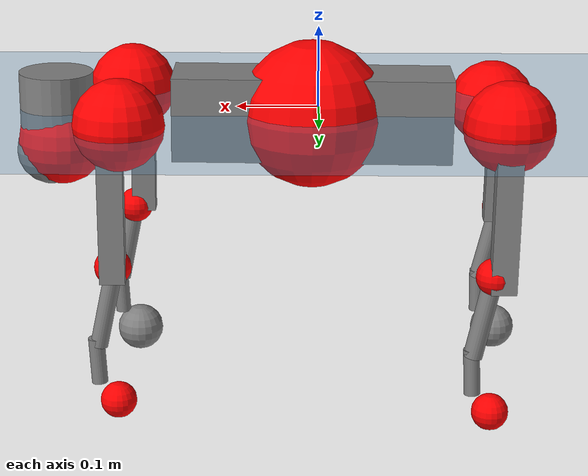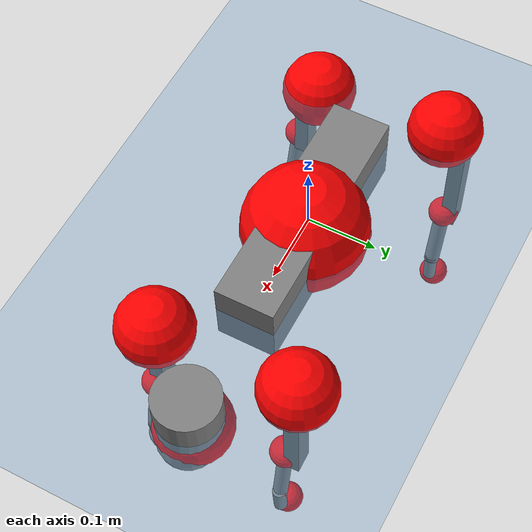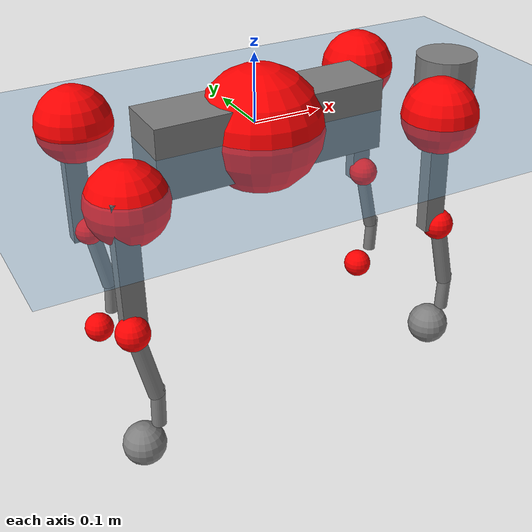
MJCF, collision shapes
<mujoco model="go2">
  <compiler angle="radian" assetdir="assets" balanceinertia="true" inertiafromgeom="false"/>

  <option timestep="0.005" density="1.2" viscosity="2e-05"/>

  <size nkey="1"/>

  <visual>
    <quality shadowsize="8192"/>
    <map shadowclip="0.5"/>
  </visual>

  <default>
    <default class="/">
      <geom contype="0" conaffinity="0" group="1" solref="-1000 -80"/>
      <site size="0.01 0.005 0.005" group="5"/>
      <general forcelimited="true" biastype="affine" gainprm="20" biasprm="0 -20 -0.5"/>
      <default class="go2">
        <joint armature="0.01" damping="0.01" frictionloss="0.2"/>
        <geom condim="1" margin="0.001"/>
        <default class="visual">
          <geom type="mesh" group="2"/>
        </default>
        <default class="collision">
          <geom group="3"/>
          <default class="foot">
            <geom size="0.022 0 0" condim="6" priority="1" friction="0.8 0.02 0.01" solimp="0.015 1 0.022"/>
          </default>
        </default>
        <default class="reward_collision_sphere">
          <geom group="5" rgba="1 0 0 1"/>
        </default>
      </default>
    </default>
  </default>

  <asset>
    <texture type="skybox" colorspace="auto" name="//unnamed_texture_0" builtin="gradient" rgb1="0.95 0.95 0.95" rgb2="0.95 0.95 0.95" width="100" height="600"/>
    <texture type="2d" colorspace="auto" name="texplane" builtin="checker" rgb1="0.345 0.575 0.748" rgb2="0.345 0.575 0.748" markrgb="1 1 1" width="512" height="512"/>
    <material name="MatPlane" class="/" texture="texplane" texuniform="true" texrepeat="2 2" specular="0.9"/>
    <material name="metal" class="/" rgba="0.9 0.95 0.95 1"/>
    <material name="black" class="/" rgba="0 0 0 1"/>
    <material name="white" class="/"/>
    <material name="gray" class="/" rgba="0.671705 0.692426 0.77427 1"/>
    <mesh name="base_0" class="/" file="base_0.obj"/>
    <mesh name="base_1" class="/" file="base_1.obj"/>
    <mesh name="base_2" class="/" file="base_2.obj"/>
    <mesh name="base_3" class="/" file="base_3.obj"/>
    <mesh name="base_4" class="/" file="base_4.obj"/>
    <mesh name="hip_0" class="/" file="hip_0.obj"/>
    <mesh name="hip_1" class="/" file="hip_1.obj"/>
    <mesh name="thigh_0" class="/" file="thigh_0.obj"/>
    <mesh name="thigh_1" class="/" file="thigh_1.obj"/>
    <mesh name="thigh_mirror_0" class="/" file="thigh_mirror_0.obj"/>
    <mesh name="thigh_mirror_1" class="/" file="thigh_mirror_1.obj"/>
    <mesh name="calf_0" class="/" file="calf_0.obj"/>
    <mesh name="calf_1" class="/" file="calf_1.obj"/>
    <mesh name="calf_mirror_0" class="/" file="calf_mirror_0.obj"/>
    <mesh name="calf_mirror_1" class="/" file="calf_mirror_1.obj"/>
    <mesh name="foot" class="/" file="foot.obj"/>
  </asset>

  <worldbody>
    <geom name="floor" class="/" size="100 100 0.125" type="plane" group="0" material="MatPlane"/>
    <light name="toplight_shadow" class="/" pos="0 0 5" dir="0.0990148 0.0990148 -0.990148" type="directional" ambient="0.04 0.04 0.04" diffuse="0.55 0.55 0.55" specular="0.12 0.12 0.12"/>
    <light name="toplight_fill" class="/" pos="0 0 5" dir="0.0990148 0.0990148 -0.990148" type="directional" castshadow="false" ambient="0.04 0.04 0.04" diffuse="0.3 0.3 0.3" specular="0.08 0.08 0.08"/>
    <body name="trunk" childclass="go2" pos="0.00730015 -0.00105752 -0.00861551" quat="0.999988 0.00053629 -0.00477954 0.00115161">
      <inertial pos="0.0417472 0.0153692 0.00524128" quat="0.0288816 0.723381 0.00529033 0.689825" mass="3.8568" diaginertia="0.161592 0.0294056 0.00846108"/>
      <joint name="//unnamed_joint_0" type="free" armature="0" damping="0" frictionloss="0"/>
      <geom name="//unnamed_geom_1" class="visual" material="black" mesh="base_0"/>
      <geom name="//unnamed_geom_2" class="visual" material="black" mesh="base_1"/>
      <geom name="//unnamed_geom_3" class="visual" material="black" mesh="base_2"/>
      <geom name="//unnamed_geom_4" class="visual" material="white" mesh="base_3"/>
      <geom name="//unnamed_geom_5" class="visual" material="gray" mesh="base_4"/>
      <geom name="trunk_1" class="collision" size="0.170594 0.0423992 0.0516953" type="box"/>
      <geom name="trunk_2" class="collision" size="0.0453467 0.040812" pos="0.313803 0 0.00830507" type="cylinder"/>
      <geom name="trunk_3" class="collision" size="0.0426259" pos="0.322611 0 -0.0498304"/>
      <geom name="//unnamed_geom_9" class="reward_collision_sphere" size="0.0906934"/>
      <geom name="//unnamed_geom_10" class="reward_collision_sphere" size="0.0544161" pos="0.308298 0 -0.0373728"/>
      <site name="imu" pos="-0.110874 0.000347491 0.117586" size="0.00906934"/>
      <camera name="track" pos="0 -1.57847 0" quat="0.707107 0.707107 0 0" mode="trackcom"/>
      <camera name="ego_camera" pos="0.343532 0 0.0373728" quat="-0.5 -0.5 0.5 0.5"/>
      <body name="FL_hip" pos="0.22683 0.0511103 0.0123613" quat="0.999997 0.00108656 -0.00203299 0.00121165">
        <inertial pos="-0.00559846 0.0152857 0.0041481" quat="0.497637 0.497439 0.504717 0.500172" mass="0.539414" diaginertia="0.00171127 0.000265372 0.000231053"/>
        <joint name="FL_hip_joint" pos="0 0 0" axis="0.999674 0.0239546 -0.00880071" stiffness="0.0625039" range="-1.03972 0.856091" armature="0.00761314" damping="0" frictionloss="0.295306"/>
        <geom name="//unnamed_geom_11" class="visual" material="metal" mesh="hip_0"/>
        <geom name="//unnamed_geom_12" class="visual" material="gray" mesh="hip_1"/>
        <geom name="//unnamed_geom_13" class="collision" size="0.041719 0.0181387" pos="0 0.0631386 0" quat="0.707107 0.707107 0 0" type="cylinder"/>
        <geom name="//unnamed_geom_14" class="reward_collision_sphere" size="0.0544161" pos="0 0.0552463 0"/>
        <body name="FL_thigh" pos="0.0112747 0.0580412 -0.0102391" quat="0.999968 -0.00131658 0.00273067 0.00736494">
          <inertial pos="-0.00721521 -0.0175471 -0.0382143" quat="0.797856 0.0468112 -0.0292213 0.600317" mass="1.05278" diaginertia="0.0102195 0.00230503 0.000329512"/>
          <joint name="FL_thigh_joint" pos="0 0 0" axis="-0.0238569 0.999394 0.025358" stiffness="0.0159665" range="-1.88075 3.24171" armature="0.0121711" damping="0" frictionloss="0.284137"/>
          <geom name="//unnamed_geom_15" class="visual" material="metal" mesh="thigh_0"/>
          <geom name="//unnamed_geom_16" class="visual" material="gray" mesh="thigh_1"/>
          <geom name="//unnamed_geom_17" class="collision" size="0.0965885 0.0111099 0.0154179" pos="0 0 -0.088449" quat="0.707107 0 0.707107 0" type="box"/>
          <body name="FL_calf" pos="0.00118154 -0.0158575 -0.172288" quat="0.999994 0.000236569 0.00179063 -0.00293071">
            <inertial pos="0.00884505 -0.00694602 -0.107192" quat="0.709382 0.013814 -0.00335553 0.704681" mass="0.189374" diaginertia="0.00307063 0.000454378 2.07251e-05"/>
            <joint name="FL_calf_joint" pos="0 0 0" axis="0.0210065 0.999745 -0.00831697" stiffness="0.0756739" range="-2.9704 -0.882639" armature="0.00564294" damping="0" frictionloss="0.160634"/>
            <geom name="//unnamed_geom_18" class="visual" material="gray" mesh="calf_0"/>
            <geom name="//unnamed_geom_19" class="visual" material="black" mesh="calf_1"/>
            <geom name="FL_calf0" class="collision" size="0.0108832 0.0544161" pos="0.0088085 0 -0.0498304" quat="0.994493 0 -0.104807 0" type="cylinder"/>
            <geom name="//unnamed_geom_21" class="collision" size="0.00997628 0.0294754" pos="0.0220213 0 -0.122915" quat="0.999688 0 0.0249974 0" type="cylinder"/>
            <geom name="//unnamed_geom_22" class="visual" pos="0 0 -0.176898" quat="1 0 0 0" material="black" mesh="foot"/>
            <geom name="FL_foot" class="foot" size="0.0186363" pos="-0.00220213 0 -0.176898"/>
            <geom name="//unnamed_geom_24" class="reward_collision_sphere" size="0.0226734"/>
            <geom name="//unnamed_geom_25" class="reward_collision_sphere" size="0.0226734" pos="-0.00220213 0 -0.176898"/>
            <site name="FL_foot" class="foot" pos="-0.00220213 0 -0.176898" size="0.00906934"/>
          </body>
        </body>
      </body>
      <body name="FR_hip" pos="0.229836 -0.0435477 0.00661504" quat="1 0.000164804 -1.24506e-05 -0.000188806">
        <inertial pos="0.00615509 0.0172207 0.0123117" quat="0.468664 0.572358 0.44971 0.500521" mass="0.493131" diaginertia="0.00156326 0.000134612 0.000205933"/>
        <joint name="FR_hip_joint" pos="0 0 0" axis="0.997439 0.0676936 0.0231021" range="-1.16263 1.06492" armature="0.00735547" damping="0.0692627" frictionloss="0.100644"/>
        <geom name="//unnamed_geom_26" class="visual" pos="0 -3.59564e-10 -1.54224e-08" quat="4.63268e-05 1 0 0" material="metal" mesh="hip_0"/>
        <geom name="//unnamed_geom_27" class="visual" pos="0 -5.82896e-10 3.81456e-08" quat="4.63268e-05 1 0 0" material="gray" mesh="hip_1"/>
        <geom name="//unnamed_geom_28" class="collision" size="0.041719 0.0181387" pos="0 -0.0631386 0" quat="0.707107 0.707107 0 0" type="cylinder"/>
        <geom name="//unnamed_geom_29" class="reward_collision_sphere" size="0.0544161" pos="0 -0.0552463 0"/>
        <body name="FR_thigh" pos="-0.0109241 -0.0645129 0.0148577" quat="0.999972 -0.00670692 -0.00266963 0.00176696">
          <inertial pos="-0.0207474 0.0255729 -0.0158304" quat="0.507403 0.0045491 0.0930968 0.856653" mass="0.762639" diaginertia="0.0119448 0.00228358 0.000296438"/>
          <joint name="FR_thigh_joint" pos="0 0 0" axis="-0.0100826 -0.999768 0.0190154" stiffness="0.000884595" range="-3.66283 1.697" armature="0.0140367" damping="0.00602294" frictionloss="0.0948858"/>
          <geom name="//unnamed_geom_30" class="visual" material="metal" mesh="thigh_mirror_0"/>
          <geom name="//unnamed_geom_31" class="visual" material="gray" mesh="thigh_mirror_1"/>
          <geom name="//unnamed_geom_32" class="collision" size="0.0965885 0.0111099 0.0154179" pos="0 0 -0.088449" quat="0.707107 0 0.707107 0" type="box"/>
          <body name="FR_calf" pos="0.0116094 -0.00337022 -0.181968" quat="0.999984 -0.000440347 0.00380857 -0.00419059">
            <inertial pos="0.0208219 -0.000842104 -0.117411" quat="0.698372 -0.0372403 -0.0794258 0.710339" mass="0.126942" diaginertia="0.00175233 0.000415469 1.69704e-05"/>
            <joint name="FR_calf_joint" pos="0 0 0" axis="-0.000991593 -0.999984 0.00564771" stiffness="0.0820145" range="1.17467 2.95695" armature="0.0018767" damping="0" frictionloss="0.091227"/>
            <geom name="//unnamed_geom_33" class="visual" material="gray" mesh="calf_mirror_0"/>
            <geom name="//unnamed_geom_34" class="visual" material="black" mesh="calf_mirror_1"/>
            <geom name="FR_calf0" class="collision" size="0.0117901 0.0544161" pos="0.0110106 0 -0.0498304" quat="0.995004 0 -0.0998334 0" type="cylinder"/>
            <geom name="//unnamed_geom_36" class="collision" size="0.00997628 0.0294754" pos="0.0220213 0 -0.122915" quat="0.999688 0 0.0249974 0" type="cylinder"/>
            <geom name="//unnamed_geom_37" class="visual" pos="0 0 -0.176898" quat="1 0 0 0" material="black" mesh="foot"/>
            <geom name="FR_foot" class="foot" size="0.0303125" pos="-0.00220213 0 -0.176898"/>
            <geom name="//unnamed_geom_39" class="reward_collision_sphere" size="0.0226734"/>
            <geom name="//unnamed_geom_40" class="reward_collision_sphere" size="0.0226734" pos="-0.00220213 0 -0.176898"/>
            <site name="FR_foot" class="foot" pos="-0.00220213 0 -0.176898" size="0.00906934"/>
          </body>
        </body>
      </body>
      <body name="RL_hip" pos="-0.228596 0.0496186 0.0151528" quat="0.999999 -0.000702817 0.00136112 -0.000407523">
        <inertial pos="0.00617829 -0.0112716 0.017191" quat="0.548592 0.44256 0.507859 0.495244" mass="0.403174" diaginertia="0.000862988 0.000155939 0.000170045"/>
        <joint name="RL_hip_joint" pos="0 0 0" axis="-0.997444 -0.0298159 -0.0649301" stiffness="0.0478136" range="-1.00599 0.874118" armature="0.0104302" damping="0.0878946" frictionloss="0.189667"/>
        <geom name="//unnamed_geom_41" class="visual" pos="-2.35697e-09 0 -4.6202e-07" quat="4.63268e-05 0 1 0" material="metal" mesh="hip_0"/>
        <geom name="//unnamed_geom_42" class="visual" pos="-3.82092e-09 0 -4.09746e-07" quat="4.63268e-05 0 1 0" material="gray" mesh="hip_1"/>
        <geom name="//unnamed_geom_43" class="collision" size="0.041719 0.0181387" pos="0 0.0631386 0" quat="0.707107 0.707107 0 0" type="cylinder"/>
        <geom name="//unnamed_geom_44" class="reward_collision_sphere" size="0.0544161" pos="0 0.0552463 0"/>
        <body name="RL_thigh" pos="0.00133927 0.0849368 -0.00988438" quat="0.99999 0.0006643 0.00112974 0.0042781">
          <inertial pos="0.0143622 -0.0260806 -0.00986414" quat="0.827039 0.076786 -0.0167561 0.556623" mass="1.11623" diaginertia="0.013705 0.00174235 0.000358654"/>
          <joint name="RL_thigh_joint" pos="0 0 0" axis="-0.000857253 0.999986 0.00530453" range="-0.310811 4.78685" armature="0.00622503" damping="0.0759903" frictionloss="0.188133"/>
          <geom name="//unnamed_geom_45" class="visual" material="metal" mesh="thigh_0"/>
          <geom name="//unnamed_geom_46" class="visual" material="gray" mesh="thigh_1"/>
          <geom name="//unnamed_geom_47" class="collision" size="0.0965885 0.0111099 0.0154179" pos="0 0 -0.088449" quat="0.707107 0 0.707107 0" type="box"/>
          <body name="RL_calf" pos="0.00923808 -0.00900939 -0.168735" quat="1 -3.68155e-05 -3.03926e-05 1.49348e-05">
            <inertial pos="-0.00373905 -0.0161013 -0.109159" quat="0.74383 0.00457008 -0.0392328 0.667201" mass="0.13911" diaginertia="0.00214199 0.000277864 1.44867e-05"/>
            <joint name="RL_calf_joint" pos="0 0 0" axis="0.00301876 0.999799 0.0198149" range="-3.02739 -0.580617" armature="0.00145301" damping="0" frictionloss="0.314806"/>
            <geom name="//unnamed_geom_48" class="visual" material="gray" mesh="calf_0"/>
            <geom name="//unnamed_geom_49" class="visual" material="black" mesh="calf_1"/>
            <geom name="RL_calf0" class="collision" size="0.0117901 0.0544161" pos="0.0110106 0 -0.0498304" quat="0.995004 0 -0.0998334 0" type="cylinder"/>
            <geom name="//unnamed_geom_51" class="collision" size="0.00997628 0.0294754" pos="0.0220213 0 -0.122915" quat="0.999688 0 0.0249974 0" type="cylinder"/>
            <geom name="//unnamed_geom_52" class="visual" pos="0 0 -0.176898" quat="1 0 0 0" material="black" mesh="foot"/>
            <geom name="RL_foot" class="foot" size="0.0130934" pos="-0.00220213 0 -0.176898"/>
            <geom name="//unnamed_geom_54" class="reward_collision_sphere" size="0.0226734"/>
            <geom name="//unnamed_geom_55" class="reward_collision_sphere" size="0.0226734" pos="-0.00220213 0 -0.176898"/>
            <site name="RL_foot" class="foot" pos="-0.00220213 0 -0.176898" size="0.00906934"/>
          </body>
        </body>
      </body>
      <body name="RR_hip" pos="-0.231467 -0.0403115 -0.00947237" quat="0.999998 -0.000806568 -0.000788893 0.00154294">
        <inertial pos="0.017602 -0.012542 0.0170631" quat="0.559342 0.523795 0.448591 0.459937" mass="0.506313" diaginertia="0.00173482 0.000217569 0.000234729"/>
        <joint name="RR_hip_joint" pos="0 0 0" axis="-0.99668 0.0413481 -0.0701365" range="-0.731036 0.829138" armature="0.0136602" damping="0.0640393" frictionloss="0.171524"/>
        <geom name="//unnamed_geom_56" class="visual" pos="2.34617e-09 -3.59564e-10 -4.46597e-07" quat="2.14617e-09 4.63268e-05 4.63268e-05 -1" material="metal" mesh="hip_0"/>
        <geom name="//unnamed_geom_57" class="visual" pos="3.84763e-09 -5.82896e-10 -4.47891e-07" quat="2.14617e-09 4.63268e-05 4.63268e-05 -1" material="gray" mesh="hip_1"/>
        <geom name="//unnamed_geom_58" class="collision" size="0.041719 0.0181387" pos="0 -0.0631386 0" quat="0.707107 0.707107 0 0" type="cylinder"/>
        <geom name="//unnamed_geom_59" class="reward_collision_sphere" size="0.0544161" pos="0 -0.0552463 0"/>
        <body name="RR_thigh" pos="-0.0173832 -0.0839924 0.0157422" quat="0.999972 -0.00684796 -0.000828572 -0.00278126">
          <inertial pos="-0.00712867 0.00603461 -0.0341346" quat="0.550859 -0.016062 0.0875734 0.829836" mass="1.15788" diaginertia="0.0129868 0.00216825 0.000425425"/>
          <joint name="RR_thigh_joint" pos="0 0 0" axis="-0.0242142 -0.999555 0.0174036" stiffness="0.0226359" range="-4.77112 0.684689" armature="0.0117734" damping="0" frictionloss="0.195035"/>
          <geom name="//unnamed_geom_60" class="visual" material="metal" mesh="thigh_mirror_0"/>
          <geom name="//unnamed_geom_61" class="visual" material="gray" mesh="thigh_mirror_1"/>
          <geom name="//unnamed_geom_62" class="collision" size="0.0965885 0.0111099 0.0154179" pos="0 0 -0.088449" quat="0.707107 0 0.707107 0" type="box"/>
          <body name="RR_calf" pos="-0.00689843 -0.0143429 -0.171226" quat="0.999966 -0.00480577 -0.00473197 -0.00479895">
            <inertial pos="-0.00755533 0.0103638 -0.125035" quat="0.666834 -0.0159371 0.0490655 0.743419" mass="0.169353" diaginertia="0.00281677 0.000439575 2.3427e-05"/>
            <joint name="RR_calf_joint" pos="0 0 0" axis="-0.031821 -0.999438 -0.0105781" range="0.84209 2.40187" armature="0.00933329" damping="0" frictionloss="0.0919643"/>
            <geom name="//unnamed_geom_63" class="visual" material="gray" mesh="calf_mirror_0"/>
            <geom name="//unnamed_geom_64" class="visual" material="black" mesh="calf_mirror_1"/>
            <geom name="RR_calf0" class="collision" size="0.0117901 0.0544161" pos="0.0110106 0 -0.0498304" quat="0.995004 0 -0.0998334 0" type="cylinder"/>
            <geom name="//unnamed_geom_66" class="collision" size="0.00997628 0.0294754" pos="0.0220213 0 -0.122915" quat="0.999688 0 0.0249974 0" type="cylinder"/>
            <geom name="//unnamed_geom_67" class="visual" pos="0 0 -0.176898" quat="1 0 0 0" material="black" mesh="foot"/>
            <geom name="RR_foot" class="foot" size="0.0294628" pos="-0.00220213 0 -0.176898"/>
            <geom name="//unnamed_geom_69" class="reward_collision_sphere" size="0.0226734"/>
            <geom name="//unnamed_geom_70" class="reward_collision_sphere" size="0.0226734" pos="-0.00220213 0 -0.176898"/>
            <site name="RR_foot" class="foot" pos="-0.00220213 0 -0.176898" size="0.00906934"/>
          </body>
        </body>
      </body>
    </body>
  </worldbody>

  <contact>
    <pair class="/" geom1="floor" geom2="FL_foot" name="//unnamed_contact_0"/>
    <pair class="/" geom1="floor" geom2="FR_foot" name="//unnamed_contact_1"/>
    <pair class="/" geom1="floor" geom2="RL_foot" name="//unnamed_contact_2"/>
    <pair class="/" geom1="floor" geom2="RR_foot" name="//unnamed_contact_3"/>
  </contact>

  <actuator>
    <general name="FL_hip" class="/" joint="FL_hip_joint" forcerange="-32.7884 32.7884" gainprm="23.2965" biasprm="0 -23.2965 -0.581115"/>
    <general name="FL_thigh" class="/" joint="FL_thigh_joint" forcerange="-35.2817 35.2817" gainprm="23.2965" biasprm="0 -23.2965 -0.581115"/>
    <general name="FL_calf" class="/" joint="FL_calf_joint" forcerange="-54.278 54.278" gainprm="23.2965" biasprm="0 -23.2965 -0.581115"/>
    <general name="FR_hip" class="/" joint="FR_hip_joint" forcerange="-19.3396 19.3396" gainprm="23.2965" biasprm="0 -23.2965 -0.581115"/>
    <general name="FR_thigh" class="/" joint="FR_thigh_joint" forcerange="-10.9783 10.9783" gainprm="23.2965" biasprm="0 -23.2965 -0.581115"/>
    <general name="FR_calf" class="/" joint="FR_calf_joint" forcerange="-50.9743 50.9743" gainprm="23.2965" biasprm="0 -23.2965 -0.581115"/>
    <general name="RL_hip" class="/" joint="RL_hip_joint" forcerange="-23.0452 23.0452" gainprm="23.2965" biasprm="0 -23.2965 -0.581115"/>
    <general name="RL_thigh" class="/" joint="RL_thigh_joint" forcerange="-32.3331 32.3331" gainprm="23.2965" biasprm="0 -23.2965 -0.581115"/>
    <general name="RL_calf" class="/" joint="RL_calf_joint" forcerange="-27.675 27.675" gainprm="23.2965" biasprm="0 -23.2965 -0.581115"/>
    <general name="RR_hip" class="/" joint="RR_hip_joint" forcerange="-25.7469 25.7469" gainprm="23.2965" biasprm="0 -23.2965 -0.581115"/>
    <general name="RR_thigh" class="/" joint="RR_thigh_joint" forcerange="-9.19381 9.19381" gainprm="23.2965" biasprm="0 -23.2965 -0.581115"/>
    <general name="RR_calf" class="/" joint="RR_calf_joint" forcerange="-30.9767 30.9767" gainprm="23.2965" biasprm="0 -23.2965 -0.581115"/>
  </actuator>

  <sensor>
    <gyro site="imu" name="imu_angular_velocity"/>
    <velocimeter site="imu" name="imu_linear_velocity"/>
    <framelinvel objtype="site" objname="FL_foot" name="FL_foot_global_linear_velocity"/>
    <framelinvel objtype="site" objname="FR_foot" name="FR_foot_global_linear_velocity"/>
    <framelinvel objtype="site" objname="RL_foot" name="RL_foot_global_linear_velocity"/>
    <framelinvel objtype="site" objname="RR_foot" name="RR_foot_global_linear_velocity"/>
  </sensor>

  <keyframe>
    <key name="home" qpos="0 0 0.325 1 0 0 0 0.1 0.8 -1.5 -0.1 -0.8 1.5 -0.1 0.8 -1.5 0.1 -0.8 1.5"/>
  </keyframe>
</mujoco>
